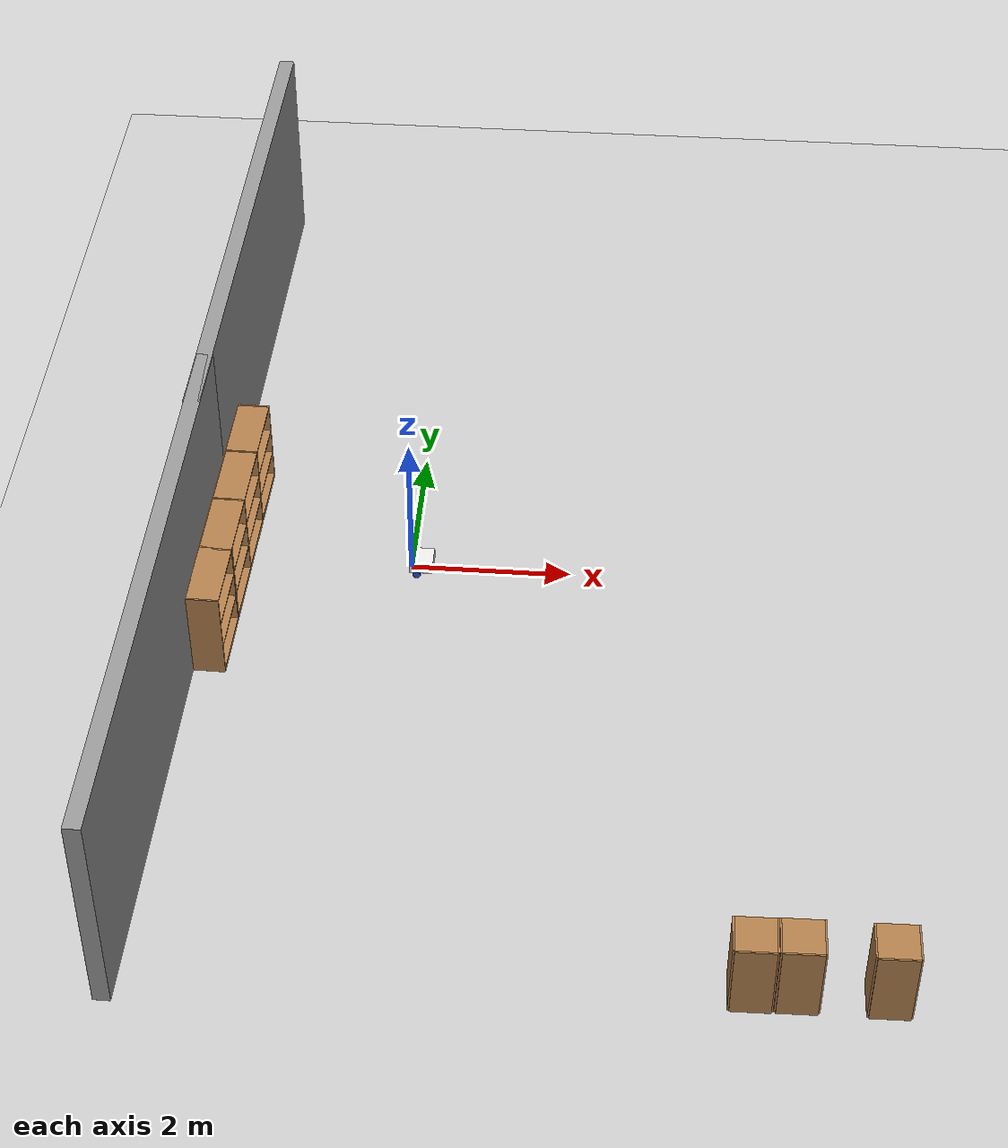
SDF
<sdf version="1.7">
 <world name="default">
  <model name="ground_plane">
   <static>1</static>
   <link name="link">
    <collision name="collision">
     <geometry><plane><normal>0 0 1</normal><size>100 100</size></plane></geometry>
     <surface><friction><ode><mu>100</mu><mu2>50</mu2></ode></friction></surface>
    </collision>
    <visual name="visual">
     <cast_shadows>0</cast_shadows>
     <geometry><plane><normal>0 0 1</normal><size>100 100</size></plane></geometry>
     <material>
      <script><uri>file://media/materials/scripts/gazebo.material</uri><name>Gazebo/Grey</name></script>
     </material>
    </visual>
   </link>
  </model>
  <model name="my_bot">
   <link name="base_link">
    <inertial>
     <pose>0.065 0 0.0625 0 -0 0</pose>
     <mass>0.6</mass>
     <inertia>
      <ixx>0.00525625</ixx>
      <ixy>0</ixy>
      <ixz>0.0005625</ixz>
      <iyy>0.00593125</iyy>
      <iyz>0</iyz>
      <izz>0.008275</izz>
     </inertia>
    </inertial>
    <collision name="base_link_fixed_joint_lump__chassis_collision">
     <pose>0.05 0 0.075 0 -0 0</pose>
     <geometry><box><size>0.3 0.3 0.15</size></box></geometry>
    </collision>
    <collision name="base_link_fixed_joint_lump__caster_wheel_collision_1">
     <pose>0.14 0 0 0 -0 0</pose>
     <geometry><sphere><radius>0.05</radius></sphere></geometry>
     <surface><friction><ode><mu>0.001</mu><mu2>0.001</mu2></ode></friction></surface>
    </collision>
    <visual name="base_link_fixed_joint_lump__chassis_visual">
     <pose>0.05 0 0.075 0 -0 0</pose>
     <geometry><box><size>0.3 0.3 0.15</size></box></geometry>
     <material>
      <script><name>Gazebo/White</name><uri>file://media/materials/scripts/gazebo.material</uri></script>
     </material>
    </visual>
    <visual name="base_link_fixed_joint_lump__caster_wheel_visual_1">
     <pose>0.14 0 0 0 -0 0</pose>
     <geometry><sphere><radius>0.05</radius></sphere></geometry>
     <material>
      <script><name>Gazebo/Black</name><uri>file://media/materials/scripts/gazebo.material</uri></script>
     </material>
    </visual>
   </link>
   <joint name="left_wheel_joint" type="revolute">
    <pose relative_to="base_link">0 0.175 0 -1.5708 0 0</pose>
    <parent>base_link</parent>
    <child>left_wheel</child>
    <axis>
     <xyz>0 0 1</xyz>
     <limit><lower>-1e+16</lower><upper>1e+16</upper></limit>
     <dynamics><spring_reference>0</spring_reference><spring_stiffness>0</spring_stiffness></dynamics>
    </axis>
   </joint>
   <link name="left_wheel">
    <pose relative_to="left_wheel_joint">0 0 0 0 -0 0</pose>
    <inertial>
     <mass>0.1</mass>
     <inertia>
      <ixx>7.58333e-05</ixx>
      <ixy>0</ixy>
      <ixz>0</ixz>
      <iyy>7.58333e-05</iyy>
      <iyz>0</iyz>
      <izz>0.000125</izz>
     </inertia>
    </inertial>
    <collision name="left_wheel_collision">
     <geometry><cylinder><length>0.04</length><radius>0.05</radius></cylinder></geometry>
    </collision>
    <visual name="left_wheel_visual">
     <geometry><cylinder><length>0.04</length><radius>0.05</radius></cylinder></geometry>
     <material>
      <script><name>Gazebo/Blue</name><uri>file://media/materials/scripts/gazebo.material</uri></script>
     </material>
    </visual>
   </link>
   <joint name="right_wheel_joint" type="revolute">
    <pose relative_to="base_link">0 -0.175 0 1.5708 -0 0</pose>
    <parent>base_link</parent>
    <child>right_wheel</child>
    <axis>
     <xyz>0 0 -1</xyz>
     <limit><lower>-1e+16</lower><upper>1e+16</upper></limit>
     <dynamics><spring_reference>0</spring_reference><spring_stiffness>0</spring_stiffness></dynamics>
    </axis>
   </joint>
   <link name="right_wheel">
    <pose relative_to="right_wheel_joint">0 0 0 0 -0 0</pose>
    <inertial>
     <mass>0.1</mass>
     <inertia>
      <ixx>7.58333e-05</ixx>
      <ixy>0</ixy>
      <ixz>0</ixz>
      <iyy>7.58333e-05</iyy>
      <iyz>0</iyz>
      <izz>0.000125</izz>
     </inertia>
    </inertial>
    <collision name="right_wheel_collision">
     <geometry><cylinder><length>0.04</length><radius>0.05</radius></cylinder></geometry>
    </collision>
    <visual name="right_wheel_visual">
     <geometry><cylinder><length>0.04</length><radius>0.05</radius></cylinder></geometry>
     <material>
      <script><name>Gazebo/Blue</name><uri>file://media/materials/scripts/gazebo.material</uri></script>
     </material>
    </visual>
   </link>
   <static>0</static>
   <plugin name="diff_drive" filename="libgazebo_ros_diff_drive.so">
    <left_joint>left_wheel_joint</left_joint>
    <right_joint>right_wheel_joint</right_joint>
    <wheel_separation>0.35</wheel_separation>
    <wheel_diameter>0.1</wheel_diameter>
    <max_wheel_torque>200</max_wheel_torque>
    <max_wheel_acceleration>10.0</max_wheel_acceleration>
    <odometry_frame>odom</odometry_frame>
    <robot_base_frame>base_link</robot_base_frame>
    <publish_odom>1</publish_odom>
    <publish_odom_tf>1</publish_odom_tf>
    <publish_wheel_tf>1</publish_wheel_tf>
   </plugin>
   <pose>0.071919 0.000271 0.05 -0 1e-06 0.001495</pose>
  </model>
  <model name="bookshelf">
   <static>1</static>
   <link name="link">
    <inertial><mass>1</mass></inertial>
    <collision name="back">
     <pose>0 0.005 0.6 0 -0 0</pose>
     <geometry><box><size>0.9 0.01 1.2</size></box></geometry>
    </collision>
    <visual name="visual1">
     <pose>0 0.005 0.6 0 -0 0</pose>
     <geometry><box><size>0.9 0.01 1.2</size></box></geometry>
     <material>
      <script><uri>file://media/materials/scripts/gazebo.material</uri><name>Gazebo/Wood</name></script>
     </material>
    </visual>
    <collision name="left_side">
     <pose>0.45 -0.195 0.6 0 -0 0</pose>
     <geometry><box><size>0.02 0.4 1.2</size></box></geometry>
    </collision>
    <visual name="visual2">
     <pose>0.45 -0.195 0.6 0 -0 0</pose>
     <geometry><box><size>0.02 0.4 1.2</size></box></geometry>
     <material>
      <script><uri>file://media/materials/scripts/gazebo.material</uri><name>Gazebo/Wood</name></script>
     </material>
    </visual>
    <collision name="right_side">
     <pose>-0.45 -0.195 0.6 0 -0 0</pose>
     <geometry><box><size>0.02 0.4 1.2</size></box></geometry>
    </collision>
    <visual name="visual3">
     <pose>-0.45 -0.195 0.6 0 -0 0</pose>
     <geometry><box><size>0.02 0.4 1.2</size></box></geometry>
     <material>
      <script><uri>file://media/materials/scripts/gazebo.material</uri><name>Gazebo/Wood</name></script>
     </material>
    </visual>
    <collision name="bottom">
     <pose>0 -0.195 0.03 0 -0 0</pose>
     <geometry><box><size>0.88 0.4 0.06</size></box></geometry>
    </collision>
    <visual name="visual4">
     <pose>0 -0.195 0.03 0 -0 0</pose>
     <geometry><box><size>0.88 0.4 0.06</size></box></geometry>
     <material>
      <script><uri>file://media/materials/scripts/gazebo.material</uri><name>Gazebo/Wood</name></script>
     </material>
    </visual>
    <collision name="top">
     <pose>0 -0.195 1.19 0 -0 0</pose>
     <geometry><box><size>0.88 0.4 0.02</size></box></geometry>
    </collision>
    <visual name="visual5">
     <pose>0 -0.195 1.19 0 -0 0</pose>
     <geometry><box><size>0.88 0.4 0.02</size></box></geometry>
     <material>
      <script><uri>file://media/materials/scripts/gazebo.material</uri><name>Gazebo/Wood</name></script>
     </material>
    </visual>
    <collision name="low_shelf">
     <pose>0 -0.195 0.43 0 -0 0</pose>
     <geometry><box><size>0.88 0.4 0.02</size></box></geometry>
    </collision>
    <visual name="visual6">
     <pose>0 -0.195 0.43 0 -0 0</pose>
     <geometry><box><size>0.88 0.4 0.02</size></box></geometry>
     <material>
      <script><uri>file://media/materials/scripts/gazebo.material</uri><name>Gazebo/Wood</name></script>
     </material>
    </visual>
    <collision name="high_shelf">
     <pose>0 -0.195 0.8 0 -0 0</pose>
     <geometry><box><size>0.88 0.4 0.02</size></box></geometry>
    </collision>
    <visual name="visual7">
     <pose>0 -0.195 0.8 0 -0 0</pose>
     <geometry><box><size>0.88 0.4 0.02</size></box></geometry>
     <material>
      <script><uri>file://media/materials/scripts/gazebo.material</uri><name>Gazebo/Wood</name></script>
     </material>
    </visual>
   </link>
   <pose>-2.4582 -1.52181 0 0 -0 1.54545</pose>
  </model>
  <model name="bookshelf_clone">
   <static>1</static>
   <link name="link">
    <inertial><mass>1</mass></inertial>
    <collision name="back">
     <pose>0 0.005 0.6 0 -0 0</pose>
     <geometry><box><size>0.9 0.01 1.2</size></box></geometry>
    </collision>
    <visual name="visual1">
     <pose>0 0.005 0.6 0 -0 0</pose>
     <geometry><box><size>0.9 0.01 1.2</size></box></geometry>
     <material>
      <script><uri>file://media/materials/scripts/gazebo.material</uri><name>Gazebo/Wood</name></script>
     </material>
    </visual>
    <collision name="left_side">
     <pose>0.45 -0.195 0.6 0 -0 0</pose>
     <geometry><box><size>0.02 0.4 1.2</size></box></geometry>
    </collision>
    <visual name="visual2">
     <pose>0.45 -0.195 0.6 0 -0 0</pose>
     <geometry><box><size>0.02 0.4 1.2</size></box></geometry>
     <material>
      <script><uri>file://media/materials/scripts/gazebo.material</uri><name>Gazebo/Wood</name></script>
     </material>
    </visual>
    <collision name="right_side">
     <pose>-0.45 -0.195 0.6 0 -0 0</pose>
     <geometry><box><size>0.02 0.4 1.2</size></box></geometry>
    </collision>
    <visual name="visual3">
     <pose>-0.45 -0.195 0.6 0 -0 0</pose>
     <geometry><box><size>0.02 0.4 1.2</size></box></geometry>
     <material>
      <script><uri>file://media/materials/scripts/gazebo.material</uri><name>Gazebo/Wood</name></script>
     </material>
    </visual>
    <collision name="bottom">
     <pose>0 -0.195 0.03 0 -0 0</pose>
     <geometry><box><size>0.88 0.4 0.06</size></box></geometry>
    </collision>
    <visual name="visual4">
     <pose>0 -0.195 0.03 0 -0 0</pose>
     <geometry><box><size>0.88 0.4 0.06</size></box></geometry>
     <material>
      <script><uri>file://media/materials/scripts/gazebo.material</uri><name>Gazebo/Wood</name></script>
     </material>
    </visual>
    <collision name="top">
     <pose>0 -0.195 1.19 0 -0 0</pose>
     <geometry><box><size>0.88 0.4 0.02</size></box></geometry>
    </collision>
    <visual name="visual5">
     <pose>0 -0.195 1.19 0 -0 0</pose>
     <geometry><box><size>0.88 0.4 0.02</size></box></geometry>
     <material>
      <script><uri>file://media/materials/scripts/gazebo.material</uri><name>Gazebo/Wood</name></script>
     </material>
    </visual>
    <collision name="low_shelf">
     <pose>0 -0.195 0.43 0 -0 0</pose>
     <geometry><box><size>0.88 0.4 0.02</size></box></geometry>
    </collision>
    <visual name="visual6">
     <pose>0 -0.195 0.43 0 -0 0</pose>
     <geometry><box><size>0.88 0.4 0.02</size></box></geometry>
     <material>
      <script><uri>file://media/materials/scripts/gazebo.material</uri><name>Gazebo/Wood</name></script>
     </material>
    </visual>
    <collision name="high_shelf">
     <pose>0 -0.195 0.8 0 -0 0</pose>
     <geometry><box><size>0.88 0.4 0.02</size></box></geometry>
    </collision>
    <visual name="visual7">
     <pose>0 -0.195 0.8 0 -0 0</pose>
     <geometry><box><size>0.88 0.4 0.02</size></box></geometry>
     <material>
      <script><uri>file://media/materials/scripts/gazebo.material</uri><name>Gazebo/Wood</name></script>
     </material>
    </visual>
   </link>
   <pose>-2.43823 -0.645012 0 0 -0 1.54545</pose>
  </model>
  <model name="bookshelf_clone_0">
   <static>1</static>
   <link name="link">
    <inertial><mass>1</mass></inertial>
    <collision name="back">
     <pose>0 0.005 0.6 0 -0 0</pose>
     <geometry><box><size>0.9 0.01 1.2</size></box></geometry>
    </collision>
    <visual name="visual1">
     <pose>0 0.005 0.6 0 -0 0</pose>
     <geometry><box><size>0.9 0.01 1.2</size></box></geometry>
     <material>
      <script><uri>file://media/materials/scripts/gazebo.material</uri><name>Gazebo/Wood</name></script>
     </material>
    </visual>
    <collision name="left_side">
     <pose>0.45 -0.195 0.6 0 -0 0</pose>
     <geometry><box><size>0.02 0.4 1.2</size></box></geometry>
    </collision>
    <visual name="visual2">
     <pose>0.45 -0.195 0.6 0 -0 0</pose>
     <geometry><box><size>0.02 0.4 1.2</size></box></geometry>
     <material>
      <script><uri>file://media/materials/scripts/gazebo.material</uri><name>Gazebo/Wood</name></script>
     </material>
    </visual>
    <collision name="right_side">
     <pose>-0.45 -0.195 0.6 0 -0 0</pose>
     <geometry><box><size>0.02 0.4 1.2</size></box></geometry>
    </collision>
    <visual name="visual3">
     <pose>-0.45 -0.195 0.6 0 -0 0</pose>
     <geometry><box><size>0.02 0.4 1.2</size></box></geometry>
     <material>
      <script><uri>file://media/materials/scripts/gazebo.material</uri><name>Gazebo/Wood</name></script>
     </material>
    </visual>
    <collision name="bottom">
     <pose>0 -0.195 0.03 0 -0 0</pose>
     <geometry><box><size>0.88 0.4 0.06</size></box></geometry>
    </collision>
    <visual name="visual4">
     <pose>0 -0.195 0.03 0 -0 0</pose>
     <geometry><box><size>0.88 0.4 0.06</size></box></geometry>
     <material>
      <script><uri>file://media/materials/scripts/gazebo.material</uri><name>Gazebo/Wood</name></script>
     </material>
    </visual>
    <collision name="top">
     <pose>0 -0.195 1.19 0 -0 0</pose>
     <geometry><box><size>0.88 0.4 0.02</size></box></geometry>
    </collision>
    <visual name="visual5">
     <pose>0 -0.195 1.19 0 -0 0</pose>
     <geometry><box><size>0.88 0.4 0.02</size></box></geometry>
     <material>
      <script><uri>file://media/materials/scripts/gazebo.material</uri><name>Gazebo/Wood</name></script>
     </material>
    </visual>
    <collision name="low_shelf">
     <pose>0 -0.195 0.43 0 -0 0</pose>
     <geometry><box><size>0.88 0.4 0.02</size></box></geometry>
    </collision>
    <visual name="visual6">
     <pose>0 -0.195 0.43 0 -0 0</pose>
     <geometry><box><size>0.88 0.4 0.02</size></box></geometry>
     <material>
      <script><uri>file://media/materials/scripts/gazebo.material</uri><name>Gazebo/Wood</name></script>
     </material>
    </visual>
    <collision name="high_shelf">
     <pose>0 -0.195 0.8 0 -0 0</pose>
     <geometry><box><size>0.88 0.4 0.02</size></box></geometry>
    </collision>
    <visual name="visual7">
     <pose>0 -0.195 0.8 0 -0 0</pose>
     <geometry><box><size>0.88 0.4 0.02</size></box></geometry>
     <material>
      <script><uri>file://media/materials/scripts/gazebo.material</uri><name>Gazebo/Wood</name></script>
     </material>
    </visual>
   </link>
   <pose>-2.41547 0.250681 0 0 -0 1.54545</pose>
  </model>
  <model name="bookshelf_clone_1">
   <static>1</static>
   <link name="link">
    <inertial><mass>1</mass></inertial>
    <collision name="back">
     <pose>0 0.005 0.6 0 -0 0</pose>
     <geometry><box><size>0.9 0.01 1.2</size></box></geometry>
    </collision>
    <visual name="visual1">
     <pose>0 0.005 0.6 0 -0 0</pose>
     <geometry><box><size>0.9 0.01 1.2</size></box></geometry>
     <material>
      <script><uri>file://media/materials/scripts/gazebo.material</uri><name>Gazebo/Wood</name></script>
     </material>
    </visual>
    <collision name="left_side">
     <pose>0.45 -0.195 0.6 0 -0 0</pose>
     <geometry><box><size>0.02 0.4 1.2</size></box></geometry>
    </collision>
    <visual name="visual2">
     <pose>0.45 -0.195 0.6 0 -0 0</pose>
     <geometry><box><size>0.02 0.4 1.2</size></box></geometry>
     <material>
      <script><uri>file://media/materials/scripts/gazebo.material</uri><name>Gazebo/Wood</name></script>
     </material>
    </visual>
    <collision name="right_side">
     <pose>-0.45 -0.195 0.6 0 -0 0</pose>
     <geometry><box><size>0.02 0.4 1.2</size></box></geometry>
    </collision>
    <visual name="visual3">
     <pose>-0.45 -0.195 0.6 0 -0 0</pose>
     <geometry><box><size>0.02 0.4 1.2</size></box></geometry>
     <material>
      <script><uri>file://media/materials/scripts/gazebo.material</uri><name>Gazebo/Wood</name></script>
     </material>
    </visual>
    <collision name="bottom">
     <pose>0 -0.195 0.03 0 -0 0</pose>
     <geometry><box><size>0.88 0.4 0.06</size></box></geometry>
    </collision>
    <visual name="visual4">
     <pose>0 -0.195 0.03 0 -0 0</pose>
     <geometry><box><size>0.88 0.4 0.06</size></box></geometry>
     <material>
      <script><uri>file://media/materials/scripts/gazebo.material</uri><name>Gazebo/Wood</name></script>
     </material>
    </visual>
    <collision name="top">
     <pose>0 -0.195 1.19 0 -0 0</pose>
     <geometry><box><size>0.88 0.4 0.02</size></box></geometry>
    </collision>
    <visual name="visual5">
     <pose>0 -0.195 1.19 0 -0 0</pose>
     <geometry><box><size>0.88 0.4 0.02</size></box></geometry>
     <material>
      <script><uri>file://media/materials/scripts/gazebo.material</uri><name>Gazebo/Wood</name></script>
     </material>
    </visual>
    <collision name="low_shelf">
     <pose>0 -0.195 0.43 0 -0 0</pose>
     <geometry><box><size>0.88 0.4 0.02</size></box></geometry>
    </collision>
    <visual name="visual6">
     <pose>0 -0.195 0.43 0 -0 0</pose>
     <geometry><box><size>0.88 0.4 0.02</size></box></geometry>
     <material>
      <script><uri>file://media/materials/scripts/gazebo.material</uri><name>Gazebo/Wood</name></script>
     </material>
    </visual>
    <collision name="high_shelf">
     <pose>0 -0.195 0.8 0 -0 0</pose>
     <geometry><box><size>0.88 0.4 0.02</size></box></geometry>
    </collision>
    <visual name="visual7">
     <pose>0 -0.195 0.8 0 -0 0</pose>
     <geometry><box><size>0.88 0.4 0.02</size></box></geometry>
     <material>
      <script><uri>file://media/materials/scripts/gazebo.material</uri><name>Gazebo/Wood</name></script>
     </material>
    </visual>
   </link>
   <pose>-2.39338 1.14633 0 0 -0 1.54545</pose>
  </model>
  <model name="cabinet">
   <static>1</static>
   <link name="cabinet_bottom_plate">
    <inertial>
     <pose>0 0 -1 0 -0 0</pose>
     <inertia><ixx>2.05</ixx><ixy>0</ixy><ixz>0</ixz><iyy>2.05</iyy><iyz>0</iyz><izz>2.05</izz></inertia>
     <mass>25</mass>
    </inertial>
    <collision name="cabinet_bottom_plate_geom">
     <pose>0 0 0.01 0 -0 0</pose>
     <geometry><box><size>0.45 0.45 0.02</size></box></geometry>
    </collision>
    <visual name="cabinet_bottom_plate_geom_visual">
     <pose>0 0 0.01 0 -0 0</pose>
     <geometry><box><size>0.45 0.45 0.02</size></box></geometry>
     <material>
      <script><uri>file://media/materials/scripts/gazebo.material</uri><name>Gazebo/Wood</name></script>
     </material>
    </visual>
    <collision name="cabinet_bottom_plate_geom_cabinet_back_plate">
     <pose>0.235 0 0.51 0 -0 0</pose>
     <geometry><box><size>0.02 0.45 1.02</size></box></geometry>
    </collision>
    <visual name="cabinet_bottom_plate_geom_cabinet_back_plate_visual">
     <pose>0.235 0 0.51 0 -0 0</pose>
     <geometry><box><size>0.02 0.45 1.02</size></box></geometry>
     <material>
      <script><uri>file://media/materials/scripts/gazebo.material</uri><name>Gazebo/Wood</name></script>
     </material>
    </visual>
    <collision name="cabinet_bottom_plate_geom_cabinet_left_plate">
     <pose>0 0.235 0.51 0 -0 0</pose>
     <geometry><box><size>0.45 0.02 1.02</size></box></geometry>
    </collision>
    <visual name="cabinet_bottom_plate_geom_cabinet_left_plate_visual">
     <pose>0 0.235 0.51 0 -0 0</pose>
     <geometry><box><size>0.45 0.02 1.02</size></box></geometry>
     <material>
      <script><uri>file://media/materials/scripts/gazebo.material</uri><name>Gazebo/Wood</name></script>
     </material>
    </visual>
    <collision name="cabinet_bottom_plate_geom_cabinet_middle_plate">
     <pose>0 0 0.51 0 -0 0</pose>
     <geometry><box><size>0.45 0.45 0.02</size></box></geometry>
    </collision>
    <visual name="cabinet_bottom_plate_geom_cabinet_middle_plate_visual">
     <pose>0 0 0.51 0 -0 0</pose>
     <geometry><box><size>0.45 0.45 0.02</size></box></geometry>
     <material>
      <script><uri>file://media/materials/scripts/gazebo.material</uri><name>Gazebo/Wood</name></script>
     </material>
    </visual>
    <collision name="cabinet_bottom_plate_geom_cabinet_right_plate">
     <pose>0 -0.235 0.51 0 -0 0</pose>
     <geometry><box><size>0.45 0.02 1.02</size></box></geometry>
    </collision>
    <visual name="cabinet_bottom_plate_geom_cabinet_right_plate_visual">
     <pose>0 -0.235 0.51 0 -0 0</pose>
     <geometry><box><size>0.45 0.02 1.02</size></box></geometry>
     <material>
      <script><uri>file://media/materials/scripts/gazebo.material</uri><name>Gazebo/Wood</name></script>
     </material>
    </visual>
    <collision name="cabinet_bottom_plate_geom_cabinet_top_plate">
     <pose>0 0 1.01 0 -0 0</pose>
     <geometry><box><size>0.45 0.45 0.02</size></box></geometry>
    </collision>
    <visual name="cabinet_bottom_plate_geom_cabinet_top_plate_visual">
     <pose>0 0 1.01 0 -0 0</pose>
     <geometry><box><size>0.45 0.45 0.02</size></box></geometry>
     <material>
      <script><uri>file://media/materials/scripts/gazebo.material</uri><name>Gazebo/Wood</name></script>
     </material>
    </visual>
   </link>
   <pose>5.7258 -6.25445 0 0 0 -1.56071</pose>
  </model>
  <model name="cabinet_clone_0">
   <static>1</static>
   <link name="cabinet_bottom_plate">
    <inertial>
     <pose>0 0 -1 0 -0 0</pose>
     <inertia><ixx>2.05</ixx><ixy>0</ixy><ixz>0</ixz><iyy>2.05</iyy><iyz>0</iyz><izz>2.05</izz></inertia>
     <mass>25</mass>
    </inertial>
    <collision name="cabinet_bottom_plate_geom">
     <pose>0 0 0.01 0 -0 0</pose>
     <geometry><box><size>0.45 0.45 0.02</size></box></geometry>
    </collision>
    <visual name="cabinet_bottom_plate_geom_visual">
     <pose>0 0 0.01 0 -0 0</pose>
     <geometry><box><size>0.45 0.45 0.02</size></box></geometry>
     <material>
      <script><uri>file://media/materials/scripts/gazebo.material</uri><name>Gazebo/Wood</name></script>
     </material>
    </visual>
    <collision name="cabinet_bottom_plate_geom_cabinet_back_plate">
     <pose>0.235 0 0.51 0 -0 0</pose>
     <geometry><box><size>0.02 0.45 1.02</size></box></geometry>
    </collision>
    <visual name="cabinet_bottom_plate_geom_cabinet_back_plate_visual">
     <pose>0.235 0 0.51 0 -0 0</pose>
     <geometry><box><size>0.02 0.45 1.02</size></box></geometry>
     <material>
      <script><uri>file://media/materials/scripts/gazebo.material</uri><name>Gazebo/Wood</name></script>
     </material>
    </visual>
    <collision name="cabinet_bottom_plate_geom_cabinet_left_plate">
     <pose>0 0.235 0.51 0 -0 0</pose>
     <geometry><box><size>0.45 0.02 1.02</size></box></geometry>
    </collision>
    <visual name="cabinet_bottom_plate_geom_cabinet_left_plate_visual">
     <pose>0 0.235 0.51 0 -0 0</pose>
     <geometry><box><size>0.45 0.02 1.02</size></box></geometry>
     <material>
      <script><uri>file://media/materials/scripts/gazebo.material</uri><name>Gazebo/Wood</name></script>
     </material>
    </visual>
    <collision name="cabinet_bottom_plate_geom_cabinet_middle_plate">
     <pose>0 0 0.51 0 -0 0</pose>
     <geometry><box><size>0.45 0.45 0.02</size></box></geometry>
    </collision>
    <visual name="cabinet_bottom_plate_geom_cabinet_middle_plate_visual">
     <pose>0 0 0.51 0 -0 0</pose>
     <geometry><box><size>0.45 0.45 0.02</size></box></geometry>
     <material>
      <script><uri>file://media/materials/scripts/gazebo.material</uri><name>Gazebo/Wood</name></script>
     </material>
    </visual>
    <collision name="cabinet_bottom_plate_geom_cabinet_right_plate">
     <pose>0 -0.235 0.51 0 -0 0</pose>
     <geometry><box><size>0.45 0.02 1.02</size></box></geometry>
    </collision>
    <visual name="cabinet_bottom_plate_geom_cabinet_right_plate_visual">
     <pose>0 -0.235 0.51 0 -0 0</pose>
     <geometry><box><size>0.45 0.02 1.02</size></box></geometry>
     <material>
      <script><uri>file://media/materials/scripts/gazebo.material</uri><name>Gazebo/Wood</name></script>
     </material>
    </visual>
    <collision name="cabinet_bottom_plate_geom_cabinet_top_plate">
     <pose>0 0 1.01 0 -0 0</pose>
     <geometry><box><size>0.45 0.45 0.02</size></box></geometry>
    </collision>
    <visual name="cabinet_bottom_plate_geom_cabinet_top_plate_visual">
     <pose>0 0 1.01 0 -0 0</pose>
     <geometry><box><size>0.45 0.45 0.02</size></box></geometry>
     <material>
      <script><uri>file://media/materials/scripts/gazebo.material</uri><name>Gazebo/Wood</name></script>
     </material>
    </visual>
   </link>
   <pose>4.74419 -6.25884 0 0 0 -1.56071</pose>
  </model>
  <model name="cabinet_clone_1">
   <static>1</static>
   <link name="cabinet_bottom_plate">
    <inertial>
     <pose>0 0 -1 0 -0 0</pose>
     <inertia><ixx>2.05</ixx><ixy>0</ixy><ixz>0</ixz><iyy>2.05</iyy><iyz>0</iyz><izz>2.05</izz></inertia>
     <mass>25</mass>
    </inertial>
    <collision name="cabinet_bottom_plate_geom">
     <pose>0 0 0.01 0 -0 0</pose>
     <geometry><box><size>0.45 0.45 0.02</size></box></geometry>
    </collision>
    <visual name="cabinet_bottom_plate_geom_visual">
     <pose>0 0 0.01 0 -0 0</pose>
     <geometry><box><size>0.45 0.45 0.02</size></box></geometry>
     <material>
      <script><uri>file://media/materials/scripts/gazebo.material</uri><name>Gazebo/Wood</name></script>
     </material>
    </visual>
    <collision name="cabinet_bottom_plate_geom_cabinet_back_plate">
     <pose>0.235 0 0.51 0 -0 0</pose>
     <geometry><box><size>0.02 0.45 1.02</size></box></geometry>
    </collision>
    <visual name="cabinet_bottom_plate_geom_cabinet_back_plate_visual">
     <pose>0.235 0 0.51 0 -0 0</pose>
     <geometry><box><size>0.02 0.45 1.02</size></box></geometry>
     <material>
      <script><uri>file://media/materials/scripts/gazebo.material</uri><name>Gazebo/Wood</name></script>
     </material>
    </visual>
    <collision name="cabinet_bottom_plate_geom_cabinet_left_plate">
     <pose>0 0.235 0.51 0 -0 0</pose>
     <geometry><box><size>0.45 0.02 1.02</size></box></geometry>
    </collision>
    <visual name="cabinet_bottom_plate_geom_cabinet_left_plate_visual">
     <pose>0 0.235 0.51 0 -0 0</pose>
     <geometry><box><size>0.45 0.02 1.02</size></box></geometry>
     <material>
      <script><uri>file://media/materials/scripts/gazebo.material</uri><name>Gazebo/Wood</name></script>
     </material>
    </visual>
    <collision name="cabinet_bottom_plate_geom_cabinet_middle_plate">
     <pose>0 0 0.51 0 -0 0</pose>
     <geometry><box><size>0.45 0.45 0.02</size></box></geometry>
    </collision>
    <visual name="cabinet_bottom_plate_geom_cabinet_middle_plate_visual">
     <pose>0 0 0.51 0 -0 0</pose>
     <geometry><box><size>0.45 0.45 0.02</size></box></geometry>
     <material>
      <script><uri>file://media/materials/scripts/gazebo.material</uri><name>Gazebo/Wood</name></script>
     </material>
    </visual>
    <collision name="cabinet_bottom_plate_geom_cabinet_right_plate">
     <pose>0 -0.235 0.51 0 -0 0</pose>
     <geometry><box><size>0.45 0.02 1.02</size></box></geometry>
    </collision>
    <visual name="cabinet_bottom_plate_geom_cabinet_right_plate_visual">
     <pose>0 -0.235 0.51 0 -0 0</pose>
     <geometry><box><size>0.45 0.02 1.02</size></box></geometry>
     <material>
      <script><uri>file://media/materials/scripts/gazebo.material</uri><name>Gazebo/Wood</name></script>
     </material>
    </visual>
    <collision name="cabinet_bottom_plate_geom_cabinet_top_plate">
     <pose>0 0 1.01 0 -0 0</pose>
     <geometry><box><size>0.45 0.45 0.02</size></box></geometry>
    </collision>
    <visual name="cabinet_bottom_plate_geom_cabinet_top_plate_visual">
     <pose>0 0 1.01 0 -0 0</pose>
     <geometry><box><size>0.45 0.45 0.02</size></box></geometry>
     <material>
      <script><uri>file://media/materials/scripts/gazebo.material</uri><name>Gazebo/Wood</name></script>
     </material>
    </visual>
   </link>
   <pose>4.25003 -6.26182 -0.012448 0 0 -1.56071</pose>
  </model>
  <model name="grey_wall_clone">
   <static>1</static>
   <link name="link">
    <pose>0 0 1.4 0 -0 0</pose>
    <collision name="collision"><geometry><box><size>7.5 0.2 2.8</size></box></geometry></collision>
    <visual name="visual">
     <cast_shadows>0</cast_shadows>
     <geometry><box><size>7.5 0.2 2.8</size></box></geometry>
     <material>
      <script>
       <uri>model://grey_wall/materials/scripts</uri>
       <uri>model://grey_wall/materials/textures</uri>
       <name>vrc/grey_wall</name>
      </script>
     </material>
    </visual>
   </link>
   <pose>-2.58578 -3.11325 0 0 0 -1.58465</pose>
  </model>
  <model name="grey_wall_clone_clone">
   <static>1</static>
   <link name="link">
    <pose>0 0 1.4 0 -0 0</pose>
    <collision name="collision"><geometry><box><size>7.5 0.2 2.8</size></box></geometry></collision>
    <visual name="visual">
     <cast_shadows>0</cast_shadows>
     <geometry><box><size>7.5 0.2 2.8</size></box></geometry>
     <material>
      <script>
       <uri>model://grey_wall/materials/scripts</uri>
       <uri>model://grey_wall/materials/textures</uri>
       <name>vrc/grey_wall</name>
      </script>
     </material>
    </visual>
   </link>
   <pose>-2.50403 3.49922 0 0 0 -1.58465</pose>
  </model>
 </world>
</sdf>
